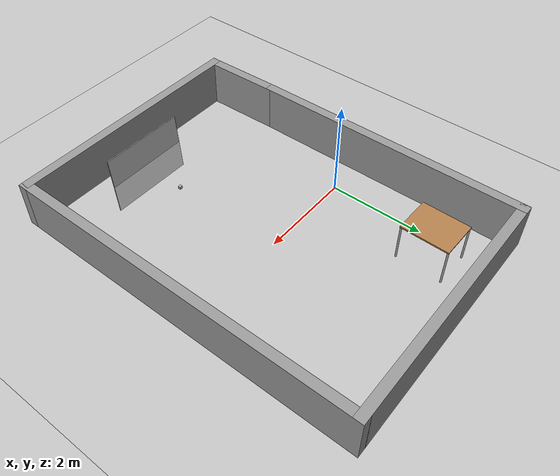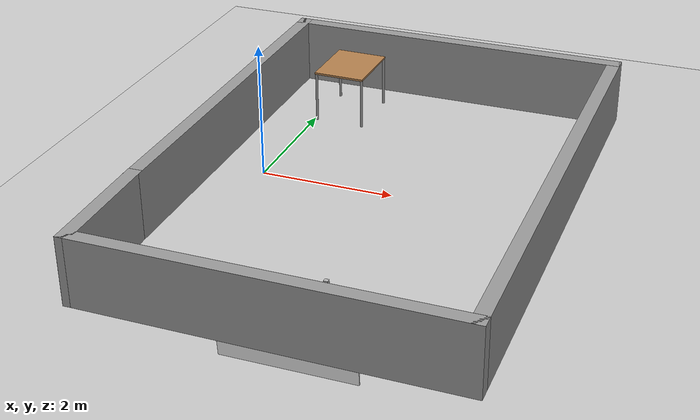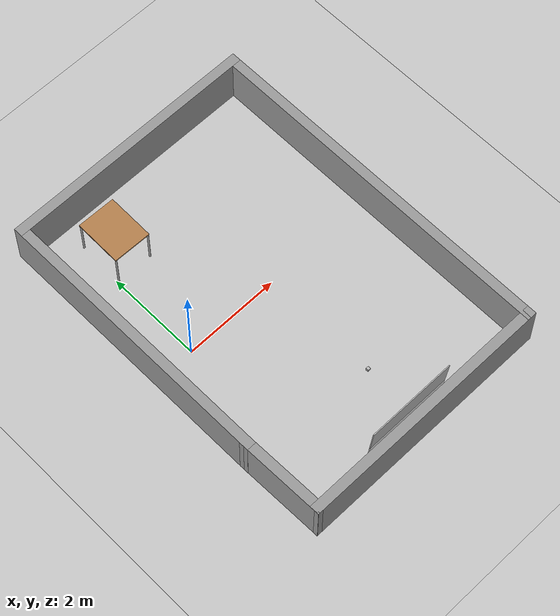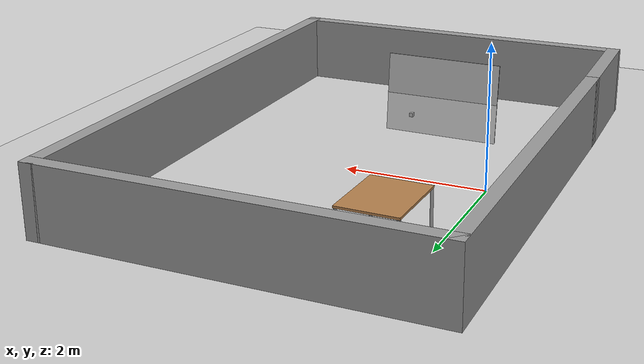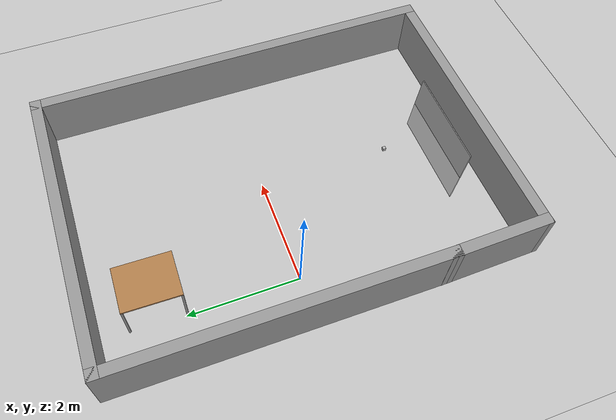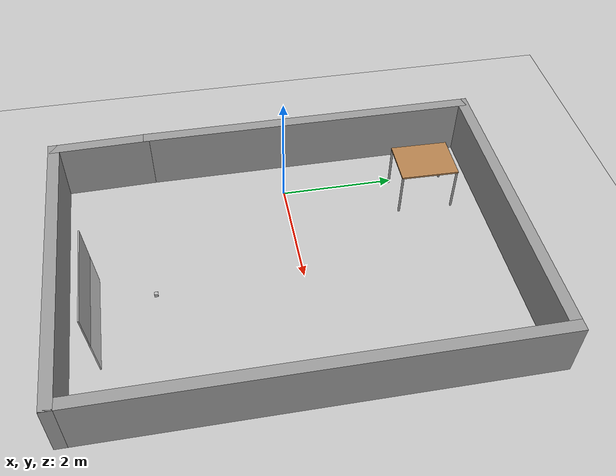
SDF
<sdf version="1.6">
 <world name="default">
  <physics name="default_physics" default="0" type="ode">
   <ode>
    <solver>
     <type>quick</type>
     <iters>20</iters>
     <sor>1</sor>
     <use_dynamic_moi_rescaling>0</use_dynamic_moi_rescaling>
    </solver>
    <constraints>
     <cfm>0</cfm>
     <erp>0.2</erp>
     <contact_max_correcting_vel>100</contact_max_correcting_vel>
     <contact_surface_layer>0</contact_surface_layer>
    </constraints>
   </ode>
   <real_time_update_rate>1000</real_time_update_rate>
   <max_step_size>0.001</max_step_size>
   <real_time_factor>1</real_time_factor>
  </physics>
  <light name="sun" type="directional">
   <pose>0 0 10 0 -0 0</pose>
   <diffuse>0.8 0.8 0.8 1</diffuse>
   <specular>0.2 0.2 0.2 1</specular>
   <attenuation>
    <range>1000</range>
    <constant>0.9</constant>
    <linear>0.01</linear>
    <quadratic>0.001</quadratic>
   </attenuation>
   <direction>-0.5 0.1 -0.9</direction>
  </light>
  <model name="ground_plane">
   <static>1</static>
   <link name="link">
    <collision name="collision">
     <geometry><plane><normal>0 0 1</normal><size>100 100</size></plane></geometry>
     <surface><friction><ode><mu>100</mu><mu2>50</mu2></ode></friction></surface>
    </collision>
    <visual name="visual">
     <cast_shadows>0</cast_shadows>
     <geometry><plane><normal>0 0 1</normal><size>100 100</size></plane></geometry>
     <material>
      <script><uri>file://media/materials/scripts/gazebo.material</uri><name>Gazebo/Grey</name></script>
     </material>
    </visual>
    <velocity_decay><linear>0</linear><angular>0</angular></velocity_decay>
   </link>
  </model>
  <scene><ambient>0.4 0.4 0.4 1</ambient><background>0.7 0.7 0.7 1</background><shadows>1</shadows></scene>
  <spherical_coordinates>
   <surface_model>EARTH_WGS84</surface_model>
   <latitude_deg>0</latitude_deg>
   <longitude_deg>0</longitude_deg>
   <elevation>0</elevation>
   <heading_deg>0</heading_deg>
  </spherical_coordinates>
  <model name="BuildingDefaultName">
   <link name="Wall_3">
    <collision name="Wall_3_Collision">
     <geometry><box><size>6.0067 0.2 1</size></box></geometry>
     <pose>0 0 0.5 0 -0 0</pose>
    </collision>
    <visual name="Wall_3_Visual">
     <pose>0 0 0.5 0 -0 0</pose>
     <geometry><box><size>6.0067 0.2 1</size></box></geometry>
     <material>
      <script><uri>file://media/materials/scripts/gazebo.material</uri><name>Gazebo/Grey</name></script>
     </material>
    </visual>
    <velocity_decay><linear>0</linear><angular>0</angular></velocity_decay>
    <pose>-1.222 0.0695 0 0 -0 1.5708</pose>
   </link>
   <link name="Wall_4">
    <collision name="Wall_4_Collision">
     <geometry><box><size>5.42953 0.2 1</size></box></geometry>
     <pose>0 0 0.5 0 -0 0</pose>
    </collision>
    <visual name="Wall_4_Visual">
     <pose>0 0 0.5 0 -0 0</pose>
     <geometry><box><size>5.42953 0.2 1</size></box></geometry>
     <material>
      <script><uri>file://media/materials/scripts/gazebo.material</uri><name>Gazebo/Grey</name></script>
     </material>
    </visual>
    <velocity_decay><linear>0</linear><angular>0</angular></velocity_decay>
    <pose>1.39289 2.97309 0 0 -0 3.3e-05</pose>
   </link>
   <link name="Wall_5">
    <collision name="Wall_5_Collision">
     <geometry><box><size>7.66826 0.2 1</size></box></geometry>
     <pose>0 0 0.5 0 -0 0</pose>
    </collision>
    <visual name="Wall_5_Visual">
     <pose>0 0 0.5 0 -0 0</pose>
     <geometry><box><size>7.66826 0.2 1</size></box></geometry>
     <material>
      <script><uri>file://media/materials/scripts/gazebo.material</uri><name>Gazebo/Grey</name></script>
     </material>
    </visual>
    <velocity_decay><linear>0</linear><angular>0</angular></velocity_decay>
    <pose>4.00778 -0.760957 0 0 0 -1.5708</pose>
   </link>
   <link name="Wall_6">
    <collision name="Wall_6_Collision">
     <geometry><box><size>5.39455 0.2 1</size></box></geometry>
     <pose>0 0 0.5 0 -0 0</pose>
    </collision>
    <visual name="Wall_6_Visual">
     <pose>0 0 0.5 0 -0 0</pose>
     <geometry><box><size>5.39455 0.2 1</size></box></geometry>
     <material>
      <script><uri>file://media/materials/scripts/gazebo.material</uri><name>Gazebo/Grey</name></script>
     </material>
    </visual>
    <velocity_decay><linear>0</linear><angular>0</angular></velocity_decay>
    <pose>1.4105 -4.49509 0 0 -0 3.14159</pose>
   </link>
   <link name="Wall_7">
    <collision name="Wall_7_Collision">
     <geometry><box><size>1.86192 0.2 1</size></box></geometry>
     <pose>0 0 0.5 0 -0 0</pose>
    </collision>
    <visual name="Wall_7_Visual">
     <pose>0 0 0.5 0 -0 0</pose>
     <geometry><box><size>1.86192 0.2 1</size></box></geometry>
     <material>
      <script><uri>file://media/materials/scripts/gazebo.material</uri><name>Gazebo/Grey</name></script>
     </material>
    </visual>
    <velocity_decay><linear>0</linear><angular>0</angular></velocity_decay>
    <pose>-1.20439 -3.66454 0 0 -0 1.592</pose>
   </link>
   <static>1</static>
   <pose>0.414776 0.54113 0 0 -0 0</pose>
  </model>
  <model name="table_0">
   <static>1</static>
   <link name="link">
    <collision name="surface">
     <pose>0 0 0.8 0 -0 0</pose>
     <geometry><box><size>1 0.8 0.03</size></box></geometry>
    </collision>
    <visual name="visual1">
     <pose>0 0 0.8 0 -0 0</pose>
     <geometry><box><size>1 0.8 0.03</size></box></geometry>
     <material>
      <script><uri>file://media/materials/scripts/gazebo.material</uri><name>Gazebo/Wood</name></script>
     </material>
    </visual>
    <collision name="front_left_leg">
     <pose>0.48 0.38 0.4 0 -0 0</pose>
     <geometry><cylinder><radius>0.02</radius><length>0.8</length></cylinder></geometry>
    </collision>
    <visual name="front_left_leg">
     <pose>0.48 0.38 0.4 0 -0 0</pose>
     <geometry><cylinder><radius>0.02</radius><length>0.8</length></cylinder></geometry>
     <material>
      <script><uri>file://media/materials/scripts/gazebo.material</uri><name>Gazebo/Grey</name></script>
     </material>
    </visual>
    <collision name="front_right_leg">
     <pose>0.48 -0.38 0.4 0 -0 0</pose>
     <geometry><cylinder><radius>0.02</radius><length>0.8</length></cylinder></geometry>
    </collision>
    <visual name="front_right_leg">
     <pose>0.48 -0.38 0.4 0 -0 0</pose>
     <geometry><cylinder><radius>0.02</radius><length>0.8</length></cylinder></geometry>
     <material>
      <script><uri>file://media/materials/scripts/gazebo.material</uri><name>Gazebo/Grey</name></script>
     </material>
    </visual>
    <collision name="back_right_leg">
     <pose>-0.48 -0.38 0.4 0 -0 0</pose>
     <geometry><cylinder><radius>0.02</radius><length>0.8</length></cylinder></geometry>
    </collision>
    <visual name="back_right_leg">
     <pose>-0.48 -0.38 0.4 0 -0 0</pose>
     <geometry><cylinder><radius>0.02</radius><length>0.8</length></cylinder></geometry>
     <material>
      <script><uri>file://media/materials/scripts/gazebo.material</uri><name>Gazebo/Grey</name></script>
     </material>
    </visual>
    <collision name="back_left_leg">
     <pose>-0.48 0.38 0.4 0 -0 0</pose>
     <geometry><cylinder><radius>0.02</radius><length>0.8</length></cylinder></geometry>
    </collision>
    <visual name="back_left_leg">
     <pose>-0.48 0.38 0.4 0 -0 0</pose>
     <geometry><cylinder><radius>0.02</radius><length>0.8</length></cylinder></geometry>
     <material>
      <script><uri>file://media/materials/scripts/gazebo.material</uri><name>Gazebo/Grey</name></script>
     </material>
    </visual>
    <velocity_decay><linear>0</linear><angular>0</angular></velocity_decay>
   </link>
   <pose>0.426382 2.4437 0 0 0 -1.58863</pose>
  </model>
  <model name="aruco_cube">
   <static>0</static>
   <link name="link">
    <inertial>
     <mass>0.25</mass>
     <inertia><ixx>0.00015</ixx><ixy>0</ixy><ixz>0</ixz><iyy>0.00015</iyy><iyz>0</iyz><izz>0.00015</izz></inertia>
    </inertial>
    <collision name="colision1">
     <geometry><mesh><uri>model://aruco_cube/meshes/aruco_cube_6cm.dae</uri><scale>1 1 1</scale></mesh></geometry>
     <surface>
      <friction><ode><mu>1</mu><mu2>1</mu2><fdir1>0 0 0</fdir1></ode></friction>
      <contact><ode><kp>1e+08</kp><kd>1</kd><min_depth>0</min_depth><max_vel>0</max_vel></ode></contact>
     </surface>
    </collision>
    <visual name="visual1">
     <geometry><mesh><uri>model://aruco_cube/meshes/aruco_cube_6cm.dae</uri><scale>1 1 1</scale></mesh></geometry>
    </visual>
    <velocity_decay><linear>0</linear><angular>0</angular></velocity_decay>
   </link>
   <pose>2.00052 -2.45813 0.029996 -0.000117 1e-06 -0.000827</pose>
  </model>
  <gravity>0 0 -9.81</gravity>
  <magnetic_field>6e-06 2.3e-05 -4.2e-05</magnetic_field>
  <atmosphere type="adiabatic"/>
  <model name="aruco_board">
   <static>0</static>
   <link name="marker">
    <inertial>
     <mass>0.5</mass>
     <inertia><ixx>0</ixx><ixy>0</ixy><ixz>0</ixz><iyy>0</iyy><iyz>0</iyz><izz>0</izz></inertia>
    </inertial>
    <visual name="visual">
     <geometry><box><size>0.02 1.9 1.3</size></box></geometry>
     <material>
      <script>
       <uri>model://aruco_board/material/scripts</uri>
       <uri>model://aruco_board/material/textures</uri>
       <name>Aruco/aruco_board</name>
      </script>
     </material>
    </visual>
    <collision name="collision"><geometry><box><size>0.02 1.9 1.3</size></box></geometry></collision>
    <self_collide>1</self_collide>
    <gravity>0</gravity>
   </link>
   <pose>1.88948 -3.53794 0.0 -0.006625 -0.085573 1.57084</pose>
  </model>
 </world>
</sdf>
